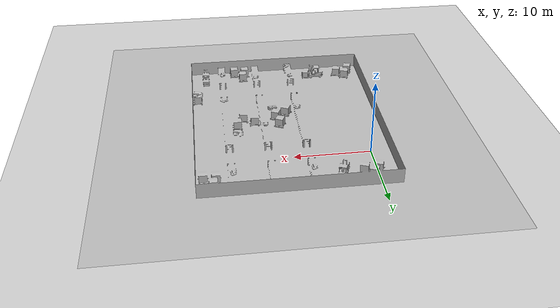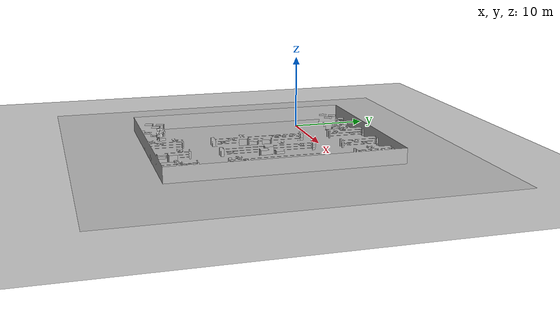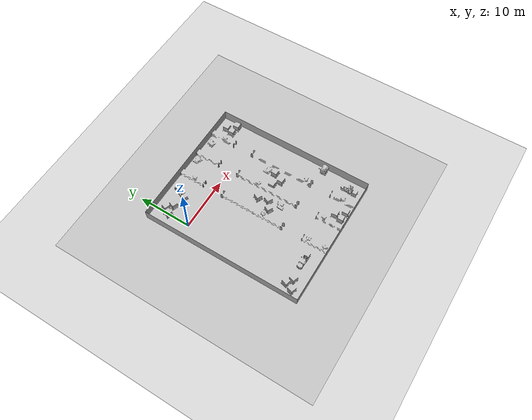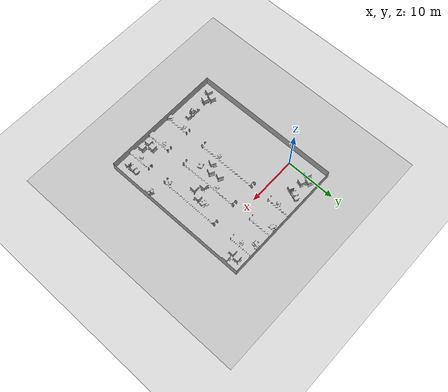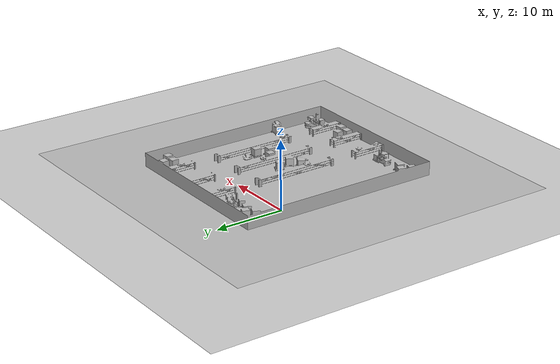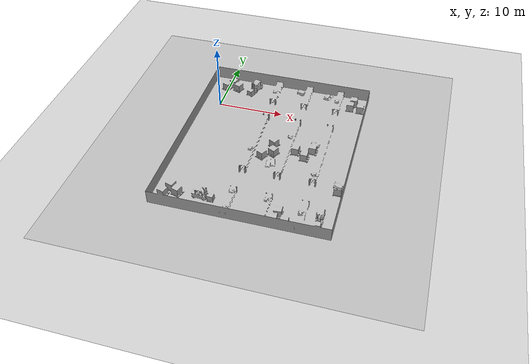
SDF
<?xml version="1.0"?>
<sdf version='1.4'>
  <world name='warehouse'>
    <!-- A global light source -->
    <include>
      <uri>model://sun</uri>
    </include>

    <!-- A ground plane -->
    <include>
      <uri>model://ground_plane</uri>
    </include>

    <physics type="ode">
      <real_time_update_rate>1000.0</real_time_update_rate>
      <max_step_size>0.00125</max_step_size>
      <real_time_factor>1</real_time_factor>
      <ode>
        <solver>
          <type>quick</type>
          <iters>150</iters>
          <precon_iters>0</precon_iters>
          <sor>1.400000</sor>
          <use_dynamic_moi_rescaling>1</use_dynamic_moi_rescaling>
        </solver>
        <constraints>
          <cfm>0.00001</cfm>
          <erp>0.2</erp>
          <contact_max_correcting_vel>2000.000000</contact_max_correcting_vel>
          <contact_surface_layer>0.01000</contact_surface_layer>
        </constraints>
      </ode>
    </physics>

   <model name="warehouse">
      <static>true</static>
      <link name="warehouse_link">
        <pose>10 -8 0.1 0 0 3.141592654</pose>
        <visual name="warehouse_visual">
          <cast_shadows>true</cast_shadows>
          <geometry>
            <mesh>
              <uri>file://models/warehouse/warehouse.dae</uri>
              <scale>1 1 1</scale>
            </mesh>
          </geometry>
        </visual>
        <collision name="warehouse_collision">
          <geometry>
            <mesh>
              <uri>file://models/warehouse/warehouse.dae</uri>
              <scale>1 1 1</scale>
            </mesh>
          </geometry>
        </collision>
      </link>
    </model>

    <scene>
      <ambient>1 1 1 1</ambient>
      <background>0.7 0.7 0.7 1</background>
      <shadows>true</shadows>
    </scene>

  </world>

</sdf>
